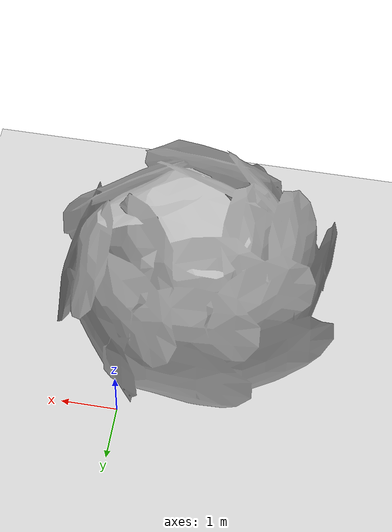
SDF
<sdf version="1.7">
 <world name="default">
  <light name="sun" type="directional">
   <pose>0 0 10 0 -0 0</pose>
   <diffuse>0.8 0.8 0.8 1</diffuse>
   <specular>0.2 0.2 0.2 1</specular>
   <attenuation>
    <range>1000</range>
    <constant>0.9</constant>
    <linear>0.01</linear>
    <quadratic>0.001</quadratic>
   </attenuation>
   <direction>-0.5 0.1 -0.9</direction>
   <spot><inner_angle>0</inner_angle><outer_angle>0</outer_angle><falloff>0</falloff></spot>
  </light>
  <light type="directional" name="my_light" cast_shadows="false">
   <origin pose="0 0 30 0 0 0"/>
   <diffuse rgba=".9 .9 .9 1"/>
   <specular rgba=".1 .1 .1 1"/>
   <attenuation range="20000"/>
   <direction xyz="0 0 -1"/>
  </light>
  <model name="ground_plane">
   <static>1</static>
   <link name="link">
    <collision name="collision">
     <geometry><plane><normal>0 0 1</normal><size>100 100</size></plane></geometry>
     <surface>
      <contact><collide_bitmask>65535</collide_bitmask></contact>
      <friction><ode><mu>100</mu><mu2>50</mu2></ode></friction>
     </surface>
    </collision>
    <visual name="visual">
     <cast_shadows>0</cast_shadows>
     <geometry><plane><normal>0 0 1</normal><size>100 100</size></plane></geometry>
     <material>
      <script><uri>file://media/materials/scripts/gazebo.material</uri><name>Gazebo/Grey</name></script>
     </material>
    </visual>
   </link>
  </model>
  <gravity>0 0 -9.8</gravity>
  <magnetic_field>6e-06 2.3e-05 -4.2e-05</magnetic_field>
  <atmosphere type="adiabatic"/>
  <physics type="ode">
   <max_step_size>0.001</max_step_size>
   <real_time_factor>1</real_time_factor>
   <real_time_update_rate>1000</real_time_update_rate>
  </physics>
  <scene><ambient>0.4 0.4 0.4 1</ambient><background>0.7 0.7 0.7 1</background><shadows>1</shadows></scene>
  <spherical_coordinates>
   <surface_model>EARTH_WGS84</surface_model>
   <latitude_deg>0</latitude_deg>
   <longitude_deg>0</longitude_deg>
   <elevation>0</elevation>
   <heading_deg>0</heading_deg>
  </spherical_coordinates>
  <model name="bowl">
   <link name="link">
    <inertial>
     <pose>0 0 0.0175 0 -0 0</pose>
     <mass>0.1</mass>
     <inertia>
      <ixx>0.000250308</ixx>
      <ixy>0</ixy>
      <ixz>0</ixz>
      <iyy>0.000250308</iyy>
      <iyz>0</iyz>
      <izz>0.0004802</izz>
     </inertia>
    </inertial>
    <collision name="collision">
     <pose>0 0 0.0175 0 -0 0</pose>
     <geometry><cylinder><radius>0.098</radius><length>0.035</length></cylinder></geometry>
    </collision>
    <visual name="visual"><geometry><mesh><uri>model://tree/tree.dae</uri></mesh></geometry></visual>
   </link>
   <pose>-1.0614 -0.978917 -4e-06 3.6e-05 3.6e-05 0</pose>
  </model>
 </world>
</sdf>
